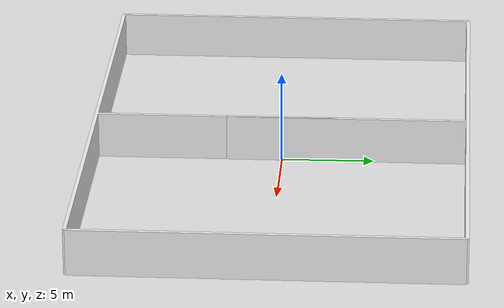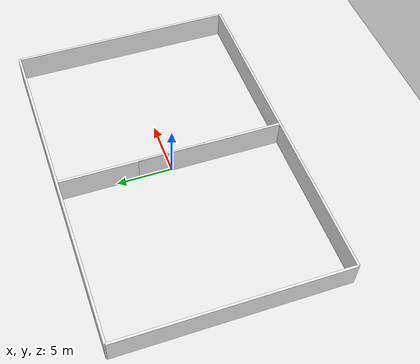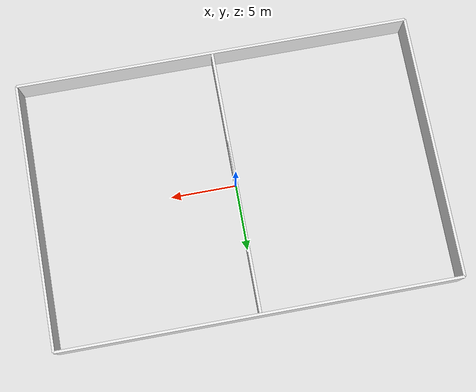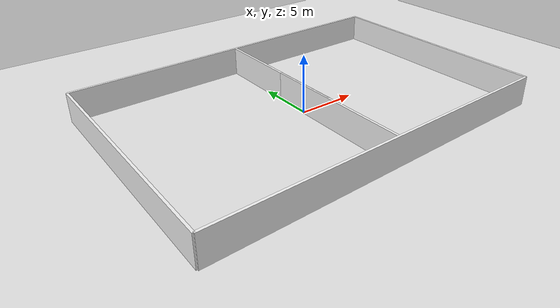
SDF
<?xml version="1.0" ?>
<sdf version="1.9">
  <world name="hospital">

    <physics name="1ms" type="ignored">
      <max_step_size>0.001</max_step_size>
      <real_time_factor>1.0</real_time_factor>
    </physics>

    <plugin filename="gz-sim-physics-system"
            name="gz::sim::systems::Physics"/>
    <plugin filename="gz-sim-sensors-system"
            name="gz::sim::systems::Sensors">
      <render_engine>ogre2</render_engine>
    </plugin>
    <plugin filename="gz-sim-scene-broadcaster-system"
            name="gz::sim::systems::SceneBroadcaster"/>
    <plugin filename="gz-sim-user-commands-system"
            name="gz::sim::systems::UserCommands"/>
    <plugin filename="gz-sim-contact-system"
            name="gz::sim::systems::Contact"/>

    <light name="sun" type="directional">
      <cast_shadows>true</cast_shadows>
      <pose>0 0 10 0 0 0</pose>
      <diffuse>0.9 0.9 0.9 1</diffuse>
      <specular>0.3 0.3 0.3 1</specular>
      <direction>-0.3 0.1 -0.9</direction>
    </light>

    <!-- Ground -->
    <model name="ground_plane">
      <static>true</static>
      <link name="link">
        <collision name="collision">
          <geometry><plane><normal>0 0 1</normal></plane></geometry>
          <surface>
            <friction><ode><mu>0.8</mu><mu2>0.8</mu2></ode></friction>
          </surface>
        </collision>
        <visual name="visual">
          <geometry><plane><normal>0 0 1</normal><size>60 60</size></plane></geometry>
          <material>
            <ambient>0.9 0.9 0.9 1</ambient>
            <diffuse>0.9 0.9 0.9 1</diffuse>
          </material>
        </visual>
      </link>
    </model>

    <!-- Perimeter walls (30 x 20 m interior) -->
    <model name="wall_north">
      <static>true</static>
      <pose>0 10.1 1.25 0 0 0</pose>
      <link name="link">
        <collision name="col"><geometry><box><size>30.2 0.2 2.5</size></box></geometry></collision>
        <visual name="vis">
          <geometry><box><size>30.2 0.2 2.5</size></box></geometry>
          <material><ambient>0.95 0.95 0.95 1</ambient><diffuse>0.95 0.95 0.95 1</diffuse></material>
        </visual>
      </link>
    </model>

    <model name="wall_south">
      <static>true</static>
      <pose>0 -10.1 1.25 0 0 0</pose>
      <link name="link">
        <collision name="col"><geometry><box><size>30.2 0.2 2.5</size></box></geometry></collision>
        <visual name="vis">
          <geometry><box><size>30.2 0.2 2.5</size></box></geometry>
          <material><ambient>0.95 0.95 0.95 1</ambient><diffuse>0.95 0.95 0.95 1</diffuse></material>
        </visual>
      </link>
    </model>

    <model name="wall_east">
      <static>true</static>
      <pose>15.1 0 1.25 0 0 0</pose>
      <link name="link">
        <collision name="col"><geometry><box><size>0.2 20.2 2.5</size></box></geometry></collision>
        <visual name="vis">
          <geometry><box><size>0.2 20.2 2.5</size></box></geometry>
          <material><ambient>0.95 0.95 0.95 1</ambient><diffuse>0.95 0.95 0.95 1</diffuse></material>
        </visual>
      </link>
    </model>

    <model name="wall_west">
      <static>true</static>
      <pose>-15.1 0 1.25 0 0 0</pose>
      <link name="link">
        <collision name="col"><geometry><box><size>0.2 20.2 2.5</size></box></geometry></collision>
        <visual name="vis">
          <geometry><box><size>0.2 20.2 2.5</size></box></geometry>
          <material><ambient>0.95 0.95 0.95 1</ambient><diffuse>0.95 0.95 0.95 1</diffuse></material>
        </visual>
      </link>
    </model>

    <!-- Corridor divider wall with doorway -->
    <model name="corridor_wall_left">
      <static>true</static>
      <pose>0 3.5 1.25 0 0 1.5708</pose>
      <link name="link">
        <collision name="col"><geometry><box><size>13.0 0.2 2.5</size></box></geometry></collision>
        <visual name="vis">
          <geometry><box><size>13.0 0.2 2.5</size></box></geometry>
          <material><ambient>0.95 0.95 0.95 1</ambient><diffuse>0.95 0.95 0.95 1</diffuse></material>
        </visual>
      </link>
    </model>

    <model name="corridor_wall_right">
      <static>true</static>
      <pose>0 -3.5 1.25 0 0 1.5708</pose>
      <link name="link">
        <collision name="col"><geometry><box><size>13.0 0.2 2.5</size></box></geometry></collision>
        <visual name="vis">
          <geometry><box><size>13.0 0.2 2.5</size></box></geometry>
          <material><ambient>0.95 0.95 0.95 1</ambient><diffuse>0.95 0.95 0.95 1</diffuse></material>
        </visual>
      </link>
    </model>

  </world>
</sdf>
